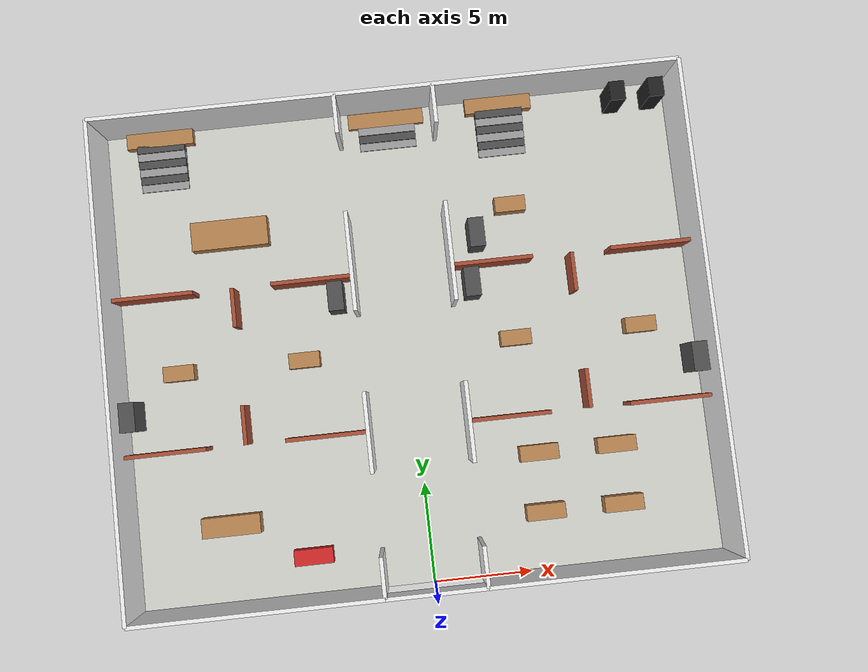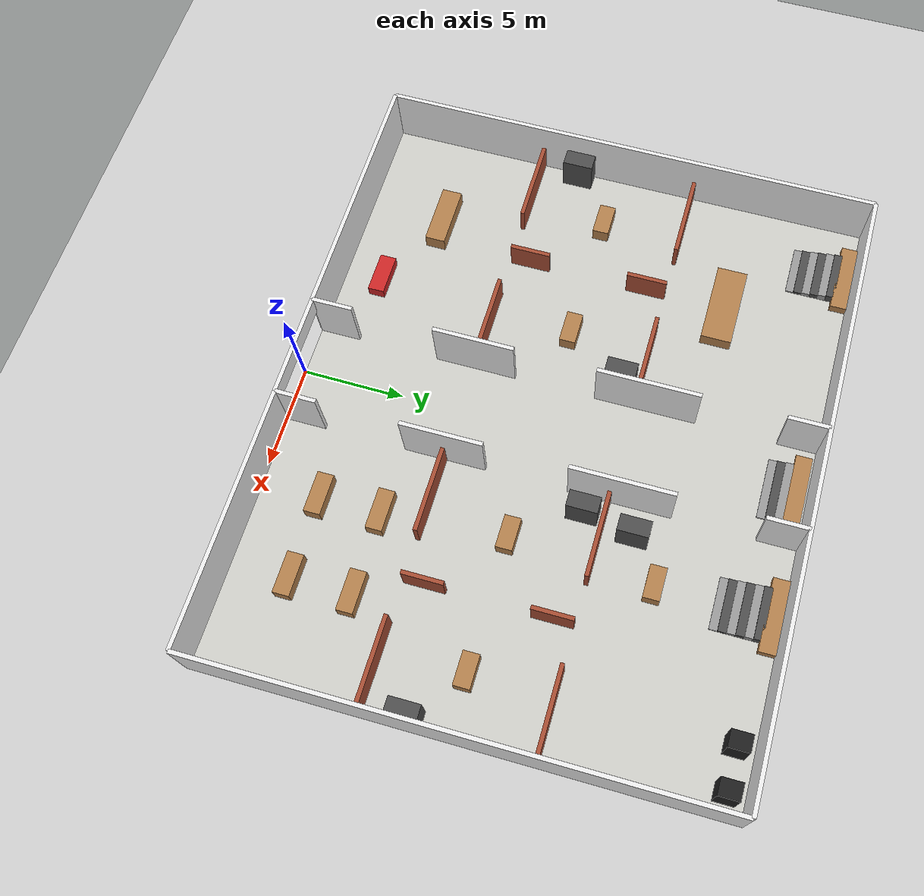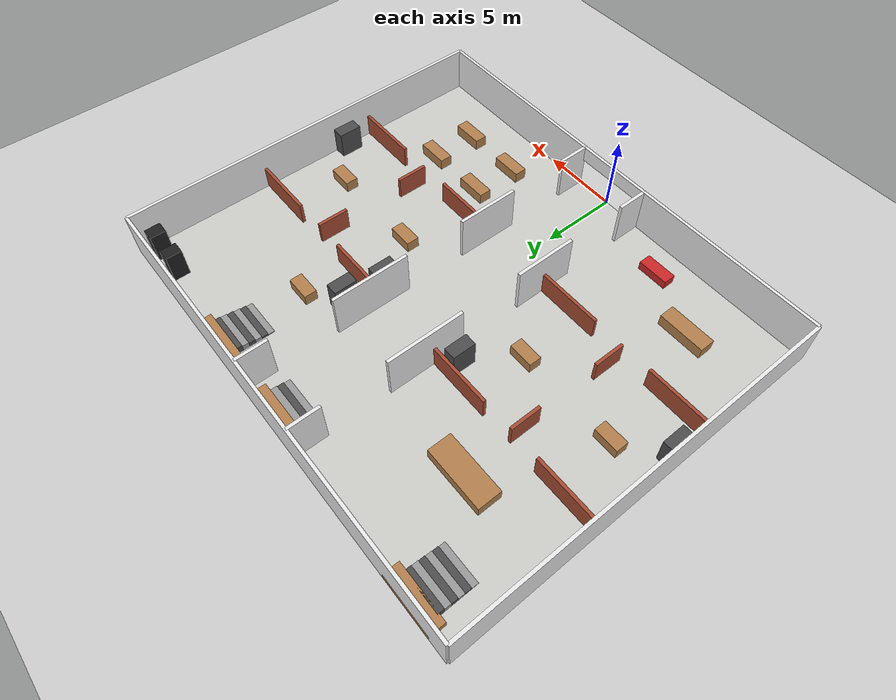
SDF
<sdf version='1.6'>
  <world name='default'>
    <!-- Lighting -->
    <light name='sun' type='directional'>
      <cast_shadows>0</cast_shadows>
      <pose>0 0 20 0 0 0</pose>
      <diffuse>0.95 0.95 0.95 1</diffuse>
      <specular>0.3 0.3 0.3 1</specular>
      <attenuation>
        <range>1000</range>
        <constant>0.9</constant>
        <linear>0.01</linear>
        <quadratic>0.001</quadratic>
      </attenuation>
      <direction>-0.3 0.3 -1.0</direction>
    </light>

    <!-- Ground plane (outside building) -->
    <model name='ground_plane'>
      <static>1</static>
      <link name='link'>
        <collision name='collision'>
          <geometry><plane><normal>0 0 1</normal><size>200 200</size></plane></geometry>
          <surface><friction><ode><mu>100</mu><mu2>50</mu2></ode></friction></surface>
        </collision>
        <visual name='visual'>
          <cast_shadows>0</cast_shadows>
          <geometry><plane><normal>0 0 1</normal><size>200 200</size></plane></geometry>
          <material><script><uri>file://media/materials/scripts/gazebo.material</uri><name>Gazebo/Grey</name></script></material>
        </visual>
      </link>
    </model>

    <physics name='default_physics' default='0' type='ode'>
      <max_step_size>0.001</max_step_size>
      <real_time_factor>1</real_time_factor>
      <real_time_update_rate>1000</real_time_update_rate>
    </physics>

    <!-- EXPANDED OFFICE COMPLEX: 30m x 25m                               -->
    <!-- Building bounds: X=-15 to 15, Y=0 to 25                         -->
    <!-- Main corridor: X=-2.5 to 2.5 (5m wide, ~3x rover width)         -->
    <!-- All doorways: 4m wide (~2.4x rover width)                        -->
    <!-- LAYOUT:                                                          -->
    <!--   West Wing (X=-15 to -2.5)  |  Corridor  |  East Wing          -->
    <!--   Y=0-8:   Reception         |   (5m)     |  Open Workspace     -->
    <!--   Y=8-16:  Cabin 1 | Cabin 2 |            |  Cabin 3 | Cabin 4  -->
    <!--   Y=16-25: Conference Room   |            |  Cabin 5 + Servers  -->
    <model name='office_complex'>
      <static>1</static>
      <pose>0 0 0 0 0 0</pose>

      <!-- Office Floor -->
      <link name='office_floor'>
        <pose>0 12.5 0.005 0 0 0</pose>
        <visual name='vis'>
          <geometry><box><size>30 25 0.01</size></box></geometry>
          <material><script><name>Gazebo/CeilingTiled</name></script></material>
        </visual>
      </link>

      <!-- ==================== OUTER WALLS (3m high) ==================== -->

      <!-- South wall: 5m entrance gap centered at X=0 -->
      <link name='wall_south_l'>
        <pose>-8.75 0 1.5 0 0 0</pose>
        <collision name='col'><geometry><box><size>12.5 0.2 3.0</size></box></geometry></collision>
        <visual name='vis'><geometry><box><size>12.5 0.2 3.0</size></box></geometry><material><script><name>Gazebo/White</name></script></material></visual>
      </link>
      <link name='wall_south_r'>
        <pose>8.75 0 1.5 0 0 0</pose>
        <collision name='col'><geometry><box><size>12.5 0.2 3.0</size></box></geometry></collision>
        <visual name='vis'><geometry><box><size>12.5 0.2 3.0</size></box></geometry><material><script><name>Gazebo/White</name></script></material></visual>
      </link>
      <link name='door_header'>
        <pose>0 0 2.5 0 0 0</pose>
        <collision name='col'><geometry><box><size>5.0 0.2 1.0</size></box></geometry></collision>
        <visual name='vis'><geometry><box><size>5.0 0.2 1.0</size></box></geometry><material><script><name>Gazebo/White</name></script></material></visual>
      </link>

      <!-- North wall -->
      <link name='wall_north'>
        <pose>0 25 1.5 0 0 0</pose>
        <collision name='col'><geometry><box><size>30.0 0.2 3.0</size></box></geometry></collision>
        <visual name='vis'><geometry><box><size>30.0 0.2 3.0</size></box></geometry><material><script><name>Gazebo/White</name></script></material></visual>
      </link>

      <!-- West wall -->
      <link name='wall_west'>
        <pose>-15 12.5 1.5 0 0 1.5708</pose>
        <collision name='col'><geometry><box><size>25.0 0.2 3.0</size></box></geometry></collision>
        <visual name='vis'><geometry><box><size>25.0 0.2 3.0</size></box></geometry><material><script><name>Gazebo/White</name></script></material></visual>
      </link>

      <!-- East wall -->
      <link name='wall_east'>
        <pose>15 12.5 1.5 0 0 1.5708</pose>
        <collision name='col'><geometry><box><size>25.0 0.2 3.0</size></box></geometry></collision>
        <visual name='vis'><geometry><box><size>25.0 0.2 3.0</size></box></geometry><material><script><name>Gazebo/White</name></script></material></visual>
      </link>

      <!-- ==================== CORRIDOR WALLS (3m high, N-S at X=+-2.5) ==================== -->
      <!-- Left corridor wall: doorways at Y=2-6, Y=10-14, Y=19-23 (each 4m) -->

      <link name='corr_l_1'>
        <pose>-2.5 1 1.5 0 0 1.5708</pose>
        <collision name='col'><geometry><box><size>2.0 0.2 3.0</size></box></geometry></collision>
        <visual name='vis'><geometry><box><size>2.0 0.2 3.0</size></box></geometry><material><script><name>Gazebo/White</name></script></material></visual>
      </link>
      <link name='corr_l_2'>
        <pose>-2.5 8 1.5 0 0 1.5708</pose>
        <collision name='col'><geometry><box><size>4.0 0.2 3.0</size></box></geometry></collision>
        <visual name='vis'><geometry><box><size>4.0 0.2 3.0</size></box></geometry><material><script><name>Gazebo/White</name></script></material></visual>
      </link>
      <link name='corr_l_3'>
        <pose>-2.5 16.5 1.5 0 0 1.5708</pose>
        <collision name='col'><geometry><box><size>5.0 0.2 3.0</size></box></geometry></collision>
        <visual name='vis'><geometry><box><size>5.0 0.2 3.0</size></box></geometry><material><script><name>Gazebo/White</name></script></material></visual>
      </link>
      <link name='corr_l_4'>
        <pose>-2.5 24 1.5 0 0 1.5708</pose>
        <collision name='col'><geometry><box><size>2.0 0.2 3.0</size></box></geometry></collision>
        <visual name='vis'><geometry><box><size>2.0 0.2 3.0</size></box></geometry><material><script><name>Gazebo/White</name></script></material></visual>
      </link>

      <!-- Right corridor wall: mirror of left -->
      <link name='corr_r_1'>
        <pose>2.5 1 1.5 0 0 1.5708</pose>
        <collision name='col'><geometry><box><size>2.0 0.2 3.0</size></box></geometry></collision>
        <visual name='vis'><geometry><box><size>2.0 0.2 3.0</size></box></geometry><material><script><name>Gazebo/White</name></script></material></visual>
      </link>
      <link name='corr_r_2'>
        <pose>2.5 8 1.5 0 0 1.5708</pose>
        <collision name='col'><geometry><box><size>4.0 0.2 3.0</size></box></geometry></collision>
        <visual name='vis'><geometry><box><size>4.0 0.2 3.0</size></box></geometry><material><script><name>Gazebo/White</name></script></material></visual>
      </link>
      <link name='corr_r_3'>
        <pose>2.5 16.5 1.5 0 0 1.5708</pose>
        <collision name='col'><geometry><box><size>5.0 0.2 3.0</size></box></geometry></collision>
        <visual name='vis'><geometry><box><size>5.0 0.2 3.0</size></box></geometry><material><script><name>Gazebo/White</name></script></material></visual>
      </link>
      <link name='corr_r_4'>
        <pose>2.5 24 1.5 0 0 1.5708</pose>
        <collision name='col'><geometry><box><size>2.0 0.2 3.0</size></box></geometry></collision>
        <visual name='vis'><geometry><box><size>2.0 0.2 3.0</size></box></geometry><material><script><name>Gazebo/White</name></script></material></visual>
      </link>

      <!-- ==================== CROSS WALLS (1.5m partition, E-W) ==================== -->
      <!-- Each has a 4m doorway gap in the center of the wing -->

      <!-- West wing Y=8 divider (gap at X=-10.75 to -6.75) -->
      <link name='xwall_w8_l'>
        <pose>-12.875 8 0.75 0 0 0</pose>
        <collision name='col'><geometry><box><size>4.25 0.2 1.5</size></box></geometry></collision>
        <visual name='vis'><geometry><box><size>4.25 0.2 1.5</size></box></geometry><material><script><name>Gazebo/Bricks</name></script></material></visual>
      </link>
      <link name='xwall_w8_r'>
        <pose>-4.625 8 0.75 0 0 0</pose>
        <collision name='col'><geometry><box><size>4.25 0.2 1.5</size></box></geometry></collision>
        <visual name='vis'><geometry><box><size>4.25 0.2 1.5</size></box></geometry><material><script><name>Gazebo/Bricks</name></script></material></visual>
      </link>

      <!-- West wing Y=16 divider (gap at X=-10.75 to -6.75) -->
      <link name='xwall_w16_l'>
        <pose>-12.875 16 0.75 0 0 0</pose>
        <collision name='col'><geometry><box><size>4.25 0.2 1.5</size></box></geometry></collision>
        <visual name='vis'><geometry><box><size>4.25 0.2 1.5</size></box></geometry><material><script><name>Gazebo/Bricks</name></script></material></visual>
      </link>
      <link name='xwall_w16_r'>
        <pose>-4.625 16 0.75 0 0 0</pose>
        <collision name='col'><geometry><box><size>4.25 0.2 1.5</size></box></geometry></collision>
        <visual name='vis'><geometry><box><size>4.25 0.2 1.5</size></box></geometry><material><script><name>Gazebo/Bricks</name></script></material></visual>
      </link>

      <!-- East wing Y=8 divider (gap at X=6.75 to 10.75) -->
      <link name='xwall_e8_l'>
        <pose>4.625 8 0.75 0 0 0</pose>
        <collision name='col'><geometry><box><size>4.25 0.2 1.5</size></box></geometry></collision>
        <visual name='vis'><geometry><box><size>4.25 0.2 1.5</size></box></geometry><material><script><name>Gazebo/Bricks</name></script></material></visual>
      </link>
      <link name='xwall_e8_r'>
        <pose>12.875 8 0.75 0 0 0</pose>
        <collision name='col'><geometry><box><size>4.25 0.2 1.5</size></box></geometry></collision>
        <visual name='vis'><geometry><box><size>4.25 0.2 1.5</size></box></geometry><material><script><name>Gazebo/Bricks</name></script></material></visual>
      </link>

      <!-- East wing Y=16 divider (gap at X=6.75 to 10.75) -->
      <link name='xwall_e16_l'>
        <pose>4.625 16 0.75 0 0 0</pose>
        <collision name='col'><geometry><box><size>4.25 0.2 1.5</size></box></geometry></collision>
        <visual name='vis'><geometry><box><size>4.25 0.2 1.5</size></box></geometry><material><script><name>Gazebo/Bricks</name></script></material></visual>
      </link>
      <link name='xwall_e16_r'>
        <pose>12.875 16 0.75 0 0 0</pose>
        <collision name='col'><geometry><box><size>4.25 0.2 1.5</size></box></geometry></collision>
        <visual name='vis'><geometry><box><size>4.25 0.2 1.5</size></box></geometry><material><script><name>Gazebo/Bricks</name></script></material></visual>
      </link>

      <!-- ==================== CABIN PARTITION WALLS (1.5m, N-S) ==================== -->
      <!-- Split middle row into pairs of cabins, 4m doorway at Y=10-14 -->

      <!-- West partition at X=-8.75 -->
      <link name='part_w_bot'>
        <pose>-8.75 9 0.75 0 0 1.5708</pose>
        <collision name='col'><geometry><box><size>2.0 0.2 1.5</size></box></geometry></collision>
        <visual name='vis'><geometry><box><size>2.0 0.2 1.5</size></box></geometry><material><script><name>Gazebo/Bricks</name></script></material></visual>
      </link>
      <link name='part_w_top'>
        <pose>-8.75 15 0.75 0 0 1.5708</pose>
        <collision name='col'><geometry><box><size>2.0 0.2 1.5</size></box></geometry></collision>
        <visual name='vis'><geometry><box><size>2.0 0.2 1.5</size></box></geometry><material><script><name>Gazebo/Bricks</name></script></material></visual>
      </link>

      <!-- East partition at X=8.75 -->
      <link name='part_e_bot'>
        <pose>8.75 9 0.75 0 0 1.5708</pose>
        <collision name='col'><geometry><box><size>2.0 0.2 1.5</size></box></geometry></collision>
        <visual name='vis'><geometry><box><size>2.0 0.2 1.5</size></box></geometry><material><script><name>Gazebo/Bricks</name></script></material></visual>
      </link>
      <link name='part_e_top'>
        <pose>8.75 15 0.75 0 0 1.5708</pose>
        <collision name='col'><geometry><box><size>2.0 0.2 1.5</size></box></geometry></collision>
        <visual name='vis'><geometry><box><size>2.0 0.2 1.5</size></box></geometry><material><script><name>Gazebo/Bricks</name></script></material></visual>
      </link>

      <!-- ==================== FURNITURE ==================== -->

      <!-- Reception (SW: X=-15 to -2.5, Y=0 to 8) -->
      <link name='reception_desk'><pose>-10 4 0.4 0 0 0</pose><collision name='col'><geometry><box><size>3.0 1.0 0.8</size></box></geometry></collision><visual name='vis'><geometry><box><size>3.0 1.0 0.8</size></box></geometry><material><script><name>Gazebo/Wood</name></script></material></visual></link>
      <link name='reception_couch'><pose>-6 2 0.3 0 0 0</pose><collision name='col'><geometry><box><size>2.0 0.8 0.6</size></box></geometry></collision><visual name='vis'><geometry><box><size>2.0 0.8 0.6</size></box></geometry><material><script><name>Gazebo/Red</name></script></material></visual></link>

      <!-- Open Workspace (SE: X=2.5 to 15, Y=0 to 8) -->
      <link name='ws_desk_1'><pose>6 3 0.375 0 0 0</pose><collision name='col'><geometry><box><size>2.0 0.8 0.75</size></box></geometry></collision><visual name='vis'><geometry><box><size>2.0 0.8 0.75</size></box></geometry><material><script><name>Gazebo/Wood</name></script></material></visual></link>
      <link name='ws_desk_2'><pose>10 3 0.375 0 0 0</pose><collision name='col'><geometry><box><size>2.0 0.8 0.75</size></box></geometry></collision><visual name='vis'><geometry><box><size>2.0 0.8 0.75</size></box></geometry><material><script><name>Gazebo/Wood</name></script></material></visual></link>
      <link name='ws_desk_3'><pose>6 6 0.375 0 0 0</pose><collision name='col'><geometry><box><size>2.0 0.8 0.75</size></box></geometry></collision><visual name='vis'><geometry><box><size>2.0 0.8 0.75</size></box></geometry><material><script><name>Gazebo/Wood</name></script></material></visual></link>
      <link name='ws_desk_4'><pose>10 6 0.375 0 0 0</pose><collision name='col'><geometry><box><size>2.0 0.8 0.75</size></box></geometry></collision><visual name='vis'><geometry><box><size>2.0 0.8 0.75</size></box></geometry><material><script><name>Gazebo/Wood</name></script></material></visual></link>

      <!-- Cabin 1 (X=-15 to -8.75, Y=8 to 16) -->
      <link name='c1_desk'><pose>-12 12 0.375 0 0 0</pose><collision name='col'><geometry><box><size>1.6 0.8 0.75</size></box></geometry></collision><visual name='vis'><geometry><box><size>1.6 0.8 0.75</size></box></geometry><material><script><name>Gazebo/Wood</name></script></material></visual></link>
      <link name='c1_cabinet'><pose>-14.5 10 0.9 0 0 0</pose><collision name='col'><geometry><box><size>0.8 1.5 1.8</size></box></geometry></collision><visual name='vis'><geometry><box><size>0.8 1.5 1.8</size></box></geometry><material><script><name>Gazebo/DarkGrey</name></script></material></visual></link>

      <!-- Cabin 2 (X=-8.75 to -2.5, Y=8 to 16) -->
      <link name='c2_desk'><pose>-5.5 12 0.375 0 0 0</pose><collision name='col'><geometry><box><size>1.6 0.8 0.75</size></box></geometry></collision><visual name='vis'><geometry><box><size>1.6 0.8 0.75</size></box></geometry><material><script><name>Gazebo/Wood</name></script></material></visual></link>
      <link name='c2_cabinet'><pose>-3.5 15 0.9 0 0 0</pose><collision name='col'><geometry><box><size>0.8 1.5 1.8</size></box></geometry></collision><visual name='vis'><geometry><box><size>0.8 1.5 1.8</size></box></geometry><material><script><name>Gazebo/DarkGrey</name></script></material></visual></link>

      <!-- Cabin 3 (X=2.5 to 8.75, Y=8 to 16) -->
      <link name='c3_desk'><pose>5.5 12 0.375 0 0 0</pose><collision name='col'><geometry><box><size>1.6 0.8 0.75</size></box></geometry></collision><visual name='vis'><geometry><box><size>1.6 0.8 0.75</size></box></geometry><material><script><name>Gazebo/Wood</name></script></material></visual></link>
      <link name='c3_cabinet'><pose>3.5 15 0.9 0 0 0</pose><collision name='col'><geometry><box><size>0.8 1.5 1.8</size></box></geometry></collision><visual name='vis'><geometry><box><size>0.8 1.5 1.8</size></box></geometry><material><script><name>Gazebo/DarkGrey</name></script></material></visual></link>

      <!-- Cabin 4 (X=8.75 to 15, Y=8 to 16) -->
      <link name='c4_desk'><pose>12 12 0.375 0 0 0</pose><collision name='col'><geometry><box><size>1.6 0.8 0.75</size></box></geometry></collision><visual name='vis'><geometry><box><size>1.6 0.8 0.75</size></box></geometry><material><script><name>Gazebo/Wood</name></script></material></visual></link>
      <link name='c4_cabinet'><pose>14.5 10 0.9 0 0 0</pose><collision name='col'><geometry><box><size>0.8 1.5 1.8</size></box></geometry></collision><visual name='vis'><geometry><box><size>0.8 1.5 1.8</size></box></geometry><material><script><name>Gazebo/DarkGrey</name></script></material></visual></link>

      <!-- Conference Room (NW: X=-15 to -2.5, Y=16 to 25) -->
      <link name='conf_table'><pose>-8.75 19 0.375 0 0 0</pose><collision name='col'><geometry><box><size>4.0 1.5 0.75</size></box></geometry></collision><visual name='vis'><geometry><box><size>4.0 1.5 0.75</size></box></geometry><material><script><name>Gazebo/Wood</name></script></material></visual></link>

      <!-- Cabin 5 + Server Area (NE: X=2.5 to 15, Y=16 to 25) -->
      <link name='c5_desk'><pose>6 19 0.375 0 0 0</pose><collision name='col'><geometry><box><size>1.6 0.8 0.75</size></box></geometry></collision><visual name='vis'><geometry><box><size>1.6 0.8 0.75</size></box></geometry><material><script><name>Gazebo/Wood</name></script></material></visual></link>
      <link name='c5_cabinet'><pose>4 17.5 0.9 0 0 0</pose><collision name='col'><geometry><box><size>0.8 1.5 1.8</size></box></geometry></collision><visual name='vis'><geometry><box><size>0.8 1.5 1.8</size></box></geometry><material><script><name>Gazebo/DarkGrey</name></script></material></visual></link>
      <link name='server_1'><pose>12 24 1.0 0 0 0</pose><collision name='col'><geometry><box><size>0.8 1.0 2.0</size></box></geometry></collision><visual name='vis'><geometry><box><size>0.8 1.0 2.0</size></box></geometry><material><script><name>Gazebo/Black</name></script></material></visual></link>
      <link name='server_2'><pose>14 24 1.0 0 0 0</pose><collision name='col'><geometry><box><size>0.8 1.0 2.0</size></box></geometry></collision><visual name='vis'><geometry><box><size>0.8 1.0 2.0</size></box></geometry><material><script><name>Gazebo/Black</name></script></material></visual></link>

      <!-- ==================== STAIRCASE 1 (NW Conference Room) ==================== -->
      <link name='stair1_s1'><pose>-12 22.0 0.04 0 0 0</pose><collision name='col'><geometry><box><size>2.5 0.4 0.08</size></box></geometry></collision><visual name='vis'><geometry><box><size>2.5 0.4 0.08</size></box></geometry><material><script><name>Gazebo/Grey</name></script></material></visual></link>
      <link name='stair1_s2'><pose>-12 22.4 0.08 0 0 0</pose><collision name='col'><geometry><box><size>2.5 0.4 0.16</size></box></geometry></collision><visual name='vis'><geometry><box><size>2.5 0.4 0.16</size></box></geometry><material><script><name>Gazebo/DarkGrey</name></script></material></visual></link>
      <link name='stair1_s3'><pose>-12 22.8 0.12 0 0 0</pose><collision name='col'><geometry><box><size>2.5 0.4 0.24</size></box></geometry></collision><visual name='vis'><geometry><box><size>2.5 0.4 0.24</size></box></geometry><material><script><name>Gazebo/Grey</name></script></material></visual></link>
      <link name='stair1_s4'><pose>-12 23.2 0.16 0 0 0</pose><collision name='col'><geometry><box><size>2.5 0.4 0.32</size></box></geometry></collision><visual name='vis'><geometry><box><size>2.5 0.4 0.32</size></box></geometry><material><script><name>Gazebo/DarkGrey</name></script></material></visual></link>
      <link name='stair1_s5'><pose>-12 23.6 0.20 0 0 0</pose><collision name='col'><geometry><box><size>2.5 0.4 0.40</size></box></geometry></collision><visual name='vis'><geometry><box><size>2.5 0.4 0.40</size></box></geometry><material><script><name>Gazebo/Grey</name></script></material></visual></link>
      <link name='stair1_s6'><pose>-12 24.0 0.24 0 0 0</pose><collision name='col'><geometry><box><size>2.5 0.4 0.48</size></box></geometry></collision><visual name='vis'><geometry><box><size>2.5 0.4 0.48</size></box></geometry><material><script><name>Gazebo/DarkGrey</name></script></material></visual></link>
      <link name='stair1_platform'><pose>-12 24.6 0.24 0 0 0</pose><collision name='col'><geometry><box><size>3.5 1.0 0.48</size></box></geometry></collision><visual name='vis'><geometry><box><size>3.5 1.0 0.48</size></box></geometry><material><script><name>Gazebo/WoodFloor</name></script></material></visual></link>

      <!-- ==================== STAIRCASE 2 (NE Cabin 5 / Server Area) ==================== -->
      <link name='stair2_s1'><pose>6 22.0 0.04 0 0 0</pose><collision name='col'><geometry><box><size>2.5 0.4 0.08</size></box></geometry></collision><visual name='vis'><geometry><box><size>2.5 0.4 0.08</size></box></geometry><material><script><name>Gazebo/Grey</name></script></material></visual></link>
      <link name='stair2_s2'><pose>6 22.4 0.08 0 0 0</pose><collision name='col'><geometry><box><size>2.5 0.4 0.16</size></box></geometry></collision><visual name='vis'><geometry><box><size>2.5 0.4 0.16</size></box></geometry><material><script><name>Gazebo/DarkGrey</name></script></material></visual></link>
      <link name='stair2_s3'><pose>6 22.8 0.12 0 0 0</pose><collision name='col'><geometry><box><size>2.5 0.4 0.24</size></box></geometry></collision><visual name='vis'><geometry><box><size>2.5 0.4 0.24</size></box></geometry><material><script><name>Gazebo/Grey</name></script></material></visual></link>
      <link name='stair2_s4'><pose>6 23.2 0.16 0 0 0</pose><collision name='col'><geometry><box><size>2.5 0.4 0.32</size></box></geometry></collision><visual name='vis'><geometry><box><size>2.5 0.4 0.32</size></box></geometry><material><script><name>Gazebo/DarkGrey</name></script></material></visual></link>
      <link name='stair2_s5'><pose>6 23.6 0.20 0 0 0</pose><collision name='col'><geometry><box><size>2.5 0.4 0.40</size></box></geometry></collision><visual name='vis'><geometry><box><size>2.5 0.4 0.40</size></box></geometry><material><script><name>Gazebo/Grey</name></script></material></visual></link>
      <link name='stair2_s6'><pose>6 24.0 0.24 0 0 0</pose><collision name='col'><geometry><box><size>2.5 0.4 0.48</size></box></geometry></collision><visual name='vis'><geometry><box><size>2.5 0.4 0.48</size></box></geometry><material><script><name>Gazebo/DarkGrey</name></script></material></visual></link>
      <link name='stair2_platform'><pose>6 24.6 0.24 0 0 0</pose><collision name='col'><geometry><box><size>3.5 1.0 0.48</size></box></geometry></collision><visual name='vis'><geometry><box><size>3.5 1.0 0.48</size></box></geometry><material><script><name>Gazebo/WoodFloor</name></script></material></visual></link>

      <!-- ==================== STAIRCASE 3 (Corridor north end) ==================== -->
      <link name='corr_stair_s1'><pose>0 23.0 0.04 0 0 0</pose><collision name='col'><geometry><box><size>3.0 0.4 0.08</size></box></geometry></collision><visual name='vis'><geometry><box><size>3.0 0.4 0.08</size></box></geometry><material><script><name>Gazebo/Grey</name></script></material></visual></link>
      <link name='corr_stair_s2'><pose>0 23.4 0.08 0 0 0</pose><collision name='col'><geometry><box><size>3.0 0.4 0.16</size></box></geometry></collision><visual name='vis'><geometry><box><size>3.0 0.4 0.16</size></box></geometry><material><script><name>Gazebo/DarkGrey</name></script></material></visual></link>
      <link name='corr_stair_s3'><pose>0 23.8 0.12 0 0 0</pose><collision name='col'><geometry><box><size>3.0 0.4 0.24</size></box></geometry></collision><visual name='vis'><geometry><box><size>3.0 0.4 0.24</size></box></geometry><material><script><name>Gazebo/Grey</name></script></material></visual></link>
      <link name='corr_platform'><pose>0 24.4 0.12 0 0 0</pose><collision name='col'><geometry><box><size>4.0 0.8 0.24</size></box></geometry></collision><visual name='vis'><geometry><box><size>4.0 0.8 0.24</size></box></geometry><material><script><name>Gazebo/WoodFloor</name></script></material></visual></link>

    </model>

    <!-- Camera: zoomed out to see entire 30x25m building -->
    <gui fullscreen='0'>
      <camera name='user_camera'>
        <pose frame=''>0.0 -12.0 30.0 0.0 0.75 1.5708</pose>
        <view_controller>orbit</view_controller>
        <projection_type>perspective</projection_type>
      </camera>
    </gui>
  </world>
</sdf>
